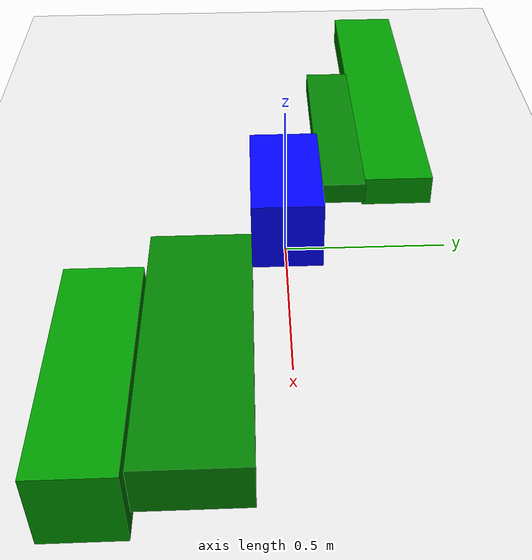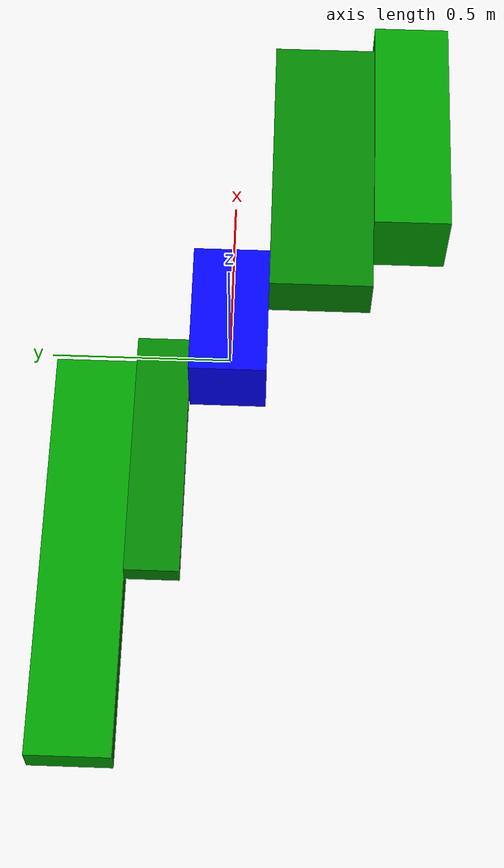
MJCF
<mujoco>
    <worldbody>
    <light diffuse=".5 .5 .5" pos="0 0 3" dir="0 0 -1"/>
    <geom type="plane" size="5 5 0.1" rgba=".9 0.9 0.9 1"/>
    <body name="main body" pos="0 0 .2">
        <joint type="free"/>
        <geom type="box" size="0.1823618432185498 0.10347852472478945 0.10960618824937188" rgba="0 0 1 1" mass="1"/>
        <site name="marker" pos="0 0 0" size="0.05"/>
        <site name="robot_center" pos="0 0 0" size="0.01"/>
        <body name="left_leg1" pos="-0.38 0.17483613073258508 -0.022576414933108902">
            <joint name="left_leg1_joint" type="hinge" axis="0 1 0" pos="0 0 0"/>
            <geom type="box" size="0.3332486218634467 0.07135760600779564 0.03376794284433009" rgba="0 .5 0 1" mass="1"/>
            <body name="left_leg2" pos="-0.26872446290399243 0.1800384542655751 -0.04">
                <joint name="left_leg2_joint" type="hinge" axis="0 1 0" pos="0 0 0"/>
                <geom type="box" size="0.5438253648545799 0.10868084825777946 0.04841911587997123" rgba="0 .6 0 1" mass="1"/>
            </body>
        </body>
        <body name="right_leg1" pos="0.5477422553256569 -0.2475361944180854 -0.08699737791904393">
            <joint name="right_leg1_joint" type="hinge" axis="0 1 0" pos="0 0 0"/>
            <geom type="box" size="0.39867213441717175 0.14405766969329595 0.07634012281716966" rgba="0 .5 0 1" mass="1"/>
            <body name="right_leg2" pos="0.1150039822423069 -0.2514764849952539 -0.00962905075272254">
                <joint name="right_leg2_joint" type="hinge" axis="0 1 0" pos="0 0 0"/>
                <geom type="box" size="0.33237558943717926 0.10741881530195795 0.13163611733371622" rgba="0 .6 0 1" mass="1"/>
            </body>
        </body>
    </body>
    </worldbody>
    <sensor>
        <framepos objtype="site" objname="marker"/>
        <velocimeter name="robot_velocity" site="robot_center"/>
    </sensor>
    <actuator>
        <position joint="left_leg1_joint" kp="10"/>
        <position joint="left_leg2_joint" kp="10"/>
        <position joint="right_leg1_joint" kp="10"/>
        <position joint="right_leg2_joint" kp="10"/>
    </actuator>
</mujoco>
